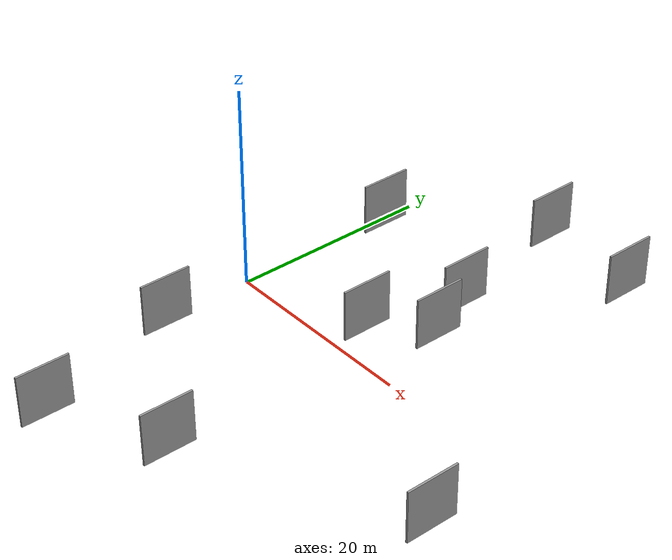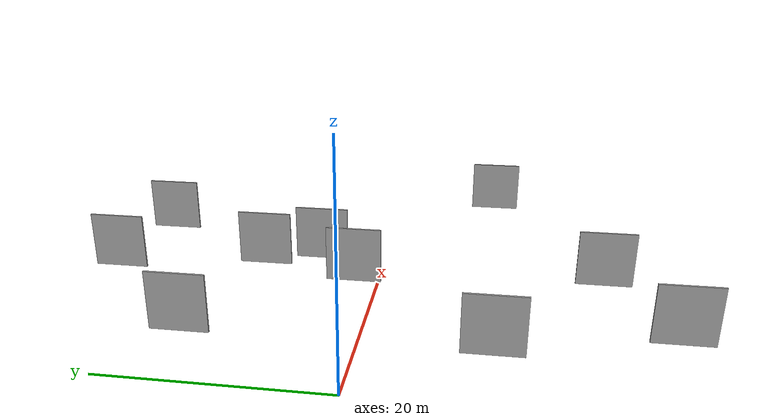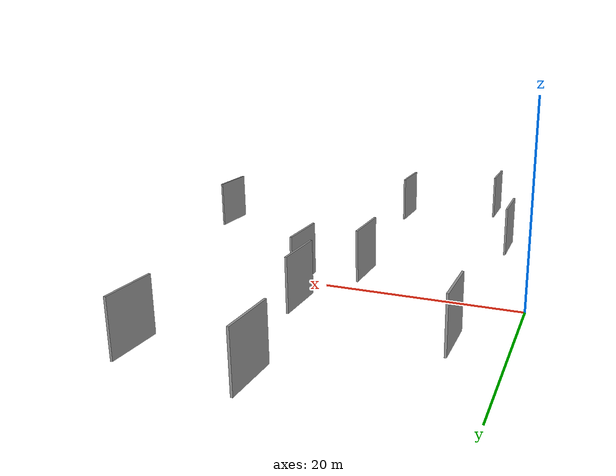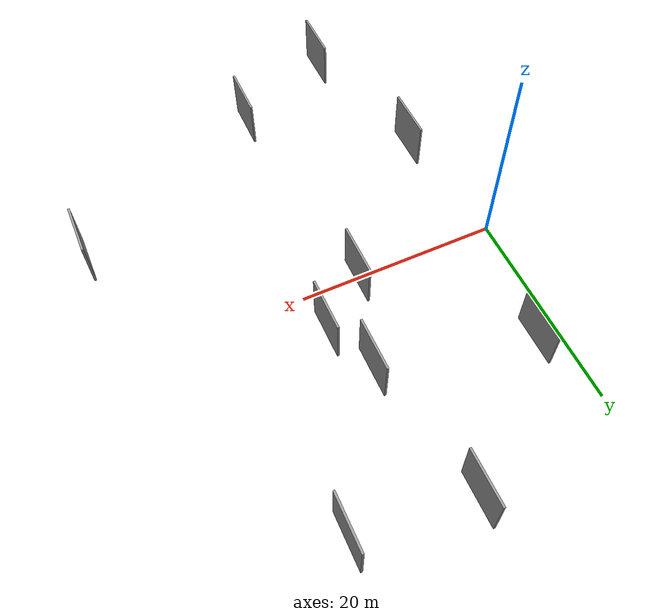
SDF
<sdf version="1.6">
 <world name="default">
  <scene>
   <sky><clouds><speed>12</speed></clouds></sky>
   <ambient>0.4 0.4 0.4 1</ambient>
   <background>0.7 0.7 0.7 1</background>
   <shadows>1</shadows>
  </scene>
  <gravity>0 0 -9.8066</gravity>
  <magnetic_field>6e-06 2.3e-05 -4.2e-05</magnetic_field>
  <physics default="0" name="default_physics" type="ode">
   <ode>
    <solver>
     <type>quick</type>
     <iters>10</iters>
     <sor>1.0</sor>
     <use_dynamic_moi_rescaling>0</use_dynamic_moi_rescaling>
    </solver>
    <constraints>
     <cfm>0</cfm>
     <erp>0.2</erp>
     <contact_max_correcting_vel>100</contact_max_correcting_vel>
     <contact_surface_layer>0.001</contact_surface_layer>
    </constraints>
   </ode>
   <max_step_size>0.004</max_step_size>
   <real_time_factor>1</real_time_factor>
   <real_time_update_rate>250</real_time_update_rate>
  </physics>
  <light name="sun" type="directional">
   <pose>0 0 10 0 0 0</pose>
   <diffuse>0.8 0.8 0.8 1</diffuse>
   <specular>0.2 0.2 0.2 1</specular>
   <attenuation>
    <range>1000</range>
    <constant>0.9</constant>
    <linear>0.01</linear>
    <quadratic>0.001</quadratic>
   </attenuation>
   <direction>-0.5 0.1 -0.9</direction>
  </light>
  <model name="grey_wall_1">
   <static>1</static>
   <pose>7.2766 -25.7472 2.5 0.000000 0.000000 1.570796</pose>
   <link name="link">
    <pose>0 0 2.50 0 0 0</pose>
    <collision name="collision"><geometry><box><size>5.00 0.2 5.00</size></box></geometry></collision>
    <visual name="visual">
     <cast_shadows>0</cast_shadows>
     <geometry><box><size>5.00 0.2 5.00</size></box></geometry>
     <material>
      <script>
       <uri>model://grey_wall/materials/scripts</uri>
       <uri>model://grey_wall/materials/textures</uri>
       <name>vrc/grey_wall</name>
      </script>
     </material>
    </visual>
   </link>
  </model>
  <model name="grey_wall_2">
   <static>1</static>
   <pose>19.9897 5.4802 2.5 0.000000 0.000000 1.570796</pose>
   <link name="link">
    <pose>0 0 2.50 0 0 0</pose>
    <collision name="collision"><geometry><box><size>5.00 0.2 5.00</size></box></geometry></collision>
    <visual name="visual">
     <cast_shadows>0</cast_shadows>
     <geometry><box><size>5.00 0.2 5.00</size></box></geometry>
     <material>
      <script>
       <uri>model://grey_wall/materials/scripts</uri>
       <uri>model://grey_wall/materials/textures</uri>
       <name>vrc/grey_wall</name>
      </script>
     </material>
    </visual>
   </link>
  </model>
  <model name="grey_wall_3">
   <static>1</static>
   <pose>3.4734 -11.1750 2.5 0.000000 0.000000 1.570796</pose>
   <link name="link">
    <pose>0 0 2.50 0 0 0</pose>
    <collision name="collision"><geometry><box><size>5.00 0.2 5.00</size></box></geometry></collision>
    <visual name="visual">
     <cast_shadows>0</cast_shadows>
     <geometry><box><size>5.00 0.2 5.00</size></box></geometry>
     <material>
      <script>
       <uri>model://grey_wall/materials/scripts</uri>
       <uri>model://grey_wall/materials/textures</uri>
       <name>vrc/grey_wall</name>
      </script>
     </material>
    </visual>
   </link>
  </model>
  <model name="grey_wall_4">
   <static>1</static>
   <pose>17.9420 10.5385 2.5 0.000000 0.000000 1.570796</pose>
   <link name="link">
    <pose>0 0 2.50 0 0 0</pose>
    <collision name="collision"><geometry><box><size>5.00 0.2 5.00</size></box></geometry></collision>
    <visual name="visual">
     <cast_shadows>0</cast_shadows>
     <geometry><box><size>5.00 0.2 5.00</size></box></geometry>
     <material>
      <script>
       <uri>model://grey_wall/materials/scripts</uri>
       <uri>model://grey_wall/materials/textures</uri>
       <name>vrc/grey_wall</name>
      </script>
     </material>
    </visual>
   </link>
  </model>
  <model name="grey_wall_5">
   <static>1</static>
   <pose>17.4820 -20.8977 2.5 0.000000 0.000000 1.570796</pose>
   <link name="link">
    <pose>0 0 2.50 0 0 0</pose>
    <collision name="collision"><geometry><box><size>5.00 0.2 5.00</size></box></geometry></collision>
    <visual name="visual">
     <cast_shadows>0</cast_shadows>
     <geometry><box><size>5.00 0.2 5.00</size></box></geometry>
     <material>
      <script>
       <uri>model://grey_wall/materials/scripts</uri>
       <uri>model://grey_wall/materials/textures</uri>
       <name>vrc/grey_wall</name>
      </script>
     </material>
    </visual>
   </link>
  </model>
  <model name="grey_wall_6">
   <static>1</static>
   <pose>25.9204 22.6378 2.5 0.000000 0.000000 1.570796</pose>
   <link name="link">
    <pose>0 0 2.50 0 0 0</pose>
    <collision name="collision"><geometry><box><size>5.00 0.2 5.00</size></box></geometry></collision>
    <visual name="visual">
     <cast_shadows>0</cast_shadows>
     <geometry><box><size>5.00 0.2 5.00</size></box></geometry>
     <material>
      <script>
       <uri>model://grey_wall/materials/scripts</uri>
       <uri>model://grey_wall/materials/textures</uri>
       <name>vrc/grey_wall</name>
      </script>
     </material>
    </visual>
   </link>
  </model>
  <model name="grey_wall_7">
   <static>1</static>
   <pose>15.1574 1.5460 2.5 0.000000 0.000000 1.570796</pose>
   <link name="link">
    <pose>0 0 2.50 0 0 0</pose>
    <collision name="collision"><geometry><box><size>5.00 0.2 5.00</size></box></geometry></collision>
    <visual name="visual">
     <cast_shadows>0</cast_shadows>
     <geometry><box><size>5.00 0.2 5.00</size></box></geometry>
     <material>
      <script>
       <uri>model://grey_wall/materials/scripts</uri>
       <uri>model://grey_wall/materials/textures</uri>
       <name>vrc/grey_wall</name>
      </script>
     </material>
    </visual>
   </link>
  </model>
  <model name="grey_wall_8">
   <static>1</static>
   <pose>37.1763 -10.9452 2.5 0.000000 0.000000 1.570796</pose>
   <link name="link">
    <pose>0 0 2.50 0 0 0</pose>
    <collision name="collision"><geometry><box><size>5.00 0.2 5.00</size></box></geometry></collision>
    <visual name="visual">
     <cast_shadows>0</cast_shadows>
     <geometry><box><size>5.00 0.2 5.00</size></box></geometry>
     <material>
      <script>
       <uri>model://grey_wall/materials/scripts</uri>
       <uri>model://grey_wall/materials/textures</uri>
       <name>vrc/grey_wall</name>
      </script>
     </material>
    </visual>
   </link>
  </model>
  <model name="grey_wall_9">
   <static>1</static>
   <pose>3.6271 13.7184 2.5 0.000000 0.000000 1.570796</pose>
   <link name="link">
    <pose>0 0 2.50 0 0 0</pose>
    <collision name="collision"><geometry><box><size>5.00 0.2 5.00</size></box></geometry></collision>
    <visual name="visual">
     <cast_shadows>0</cast_shadows>
     <geometry><box><size>5.00 0.2 5.00</size></box></geometry>
     <material>
      <script>
       <uri>model://grey_wall/materials/scripts</uri>
       <uri>model://grey_wall/materials/textures</uri>
       <name>vrc/grey_wall</name>
      </script>
     </material>
    </visual>
   </link>
  </model>
  <model name="grey_wall_10">
   <static>1</static>
   <pose>15.2470 23.9674 2.5 0.000000 0.000000 1.570796</pose>
   <link name="link">
    <pose>0 0 2.50 0 0 0</pose>
    <collision name="collision"><geometry><box><size>5.00 0.2 5.00</size></box></geometry></collision>
    <visual name="visual">
     <cast_shadows>0</cast_shadows>
     <geometry><box><size>5.00 0.2 5.00</size></box></geometry>
     <material>
      <script>
       <uri>model://grey_wall/materials/scripts</uri>
       <uri>model://grey_wall/materials/textures</uri>
       <name>vrc/grey_wall</name>
      </script>
     </material>
    </visual>
   </link>
  </model>
 </world>
</sdf>
